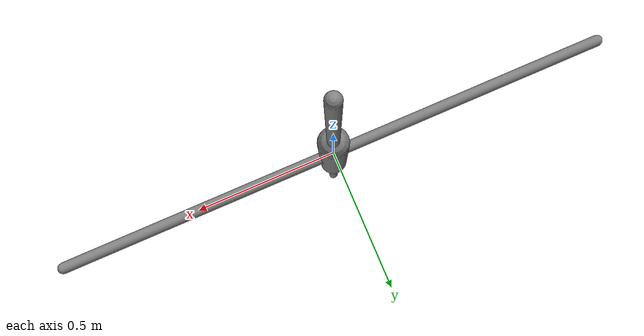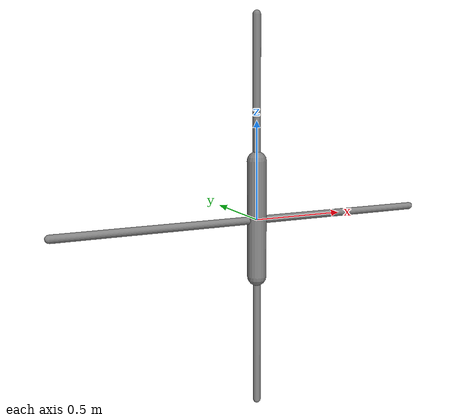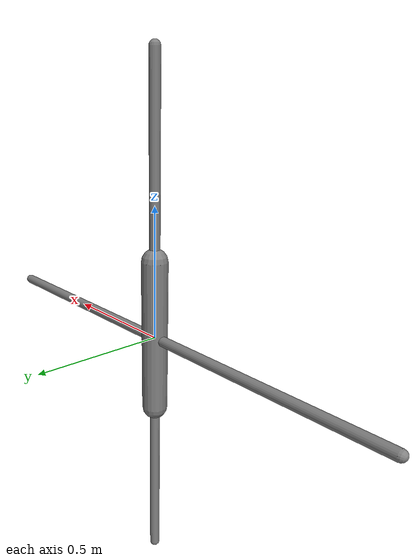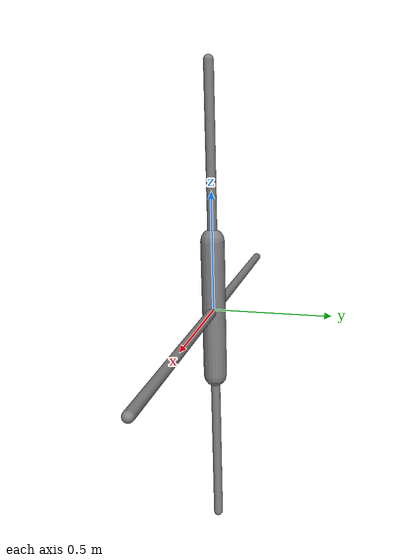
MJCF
<mujoco model="inverted pendulum">
    <compiler inertiafromgeom="true" />
    <default>
        <joint armature="0" damping="1" limited="true" />
        <geom contype="0" friction="1 0.1 0.1" />
        <tendon />
        <motor ctrlrange="-1 1" />
    </default>
    <option gravity="0.0 0.0 0.0" timestep="0.02" />
    <custom>
        <!-- brax custom params -->
        <numeric data="10000" name="constraint_stiffness" />
        <numeric data="10000" name="constraint_limit_stiffness" />
        <numeric data="0" name="spring_mass_scale" />
        <numeric data="1" name="spring_inertia_scale" />
        <numeric data="5" name="solver_maxls" />
    </custom>
    <size nstack="3000" />
    <worldbody>
        <geom name="rail_y" pos="0 0 0" quat="1.0 0 0.0 0" size="0.02 1" mass="0.0001" type="capsule" />
        <body name="rail_x_with_cart" pos=" 0 0 0">
            <joint axis="0 0 1" limited="true" name="slider_y" pos="0 0 0" range="-1 1" type="slide" />
            <geom name="rail_x" pos="0 0 0" quat="0.707 0 0.707 0" size="0.02 1" mass="0.0001" type="capsule" />
            <body name="cart" pos="0 0 0">
                <joint axis="1 0 0" limited="true" name="slider_x" pos="0 0 0" range="-1 1" type="slide" />
                <geom name="cart" pos="0 0 0" quat="0.707 0 0.707 0" size="0.01 0.01" mass="0.0001"  type="capsule" />
                <body name="pole" pos="0 0 0">
                    <joint axis="0 1 0" name="hinge" pos="0 0 0" range="-180 180" type="hinge" />
                    <geom fromto="0.0 0 -0.3 0.0 0 0.3" name="cpole" size="0.05" type="capsule" />
                </body>
            </body>
        </body>
    </worldbody>
    <actuator>
        <motor ctrllimited="true" ctrlrange="-1 1" gear="100" joint="slider_x" name="act_x" />
        <motor ctrllimited="true" ctrlrange="-1 1" gear="100" joint="slider_y" name="act_y" />
        <motor ctrllimited="true" ctrlrange="-1 1" gear="10" joint="hinge" name="act_hinge" />
    </actuator>
</mujoco>
